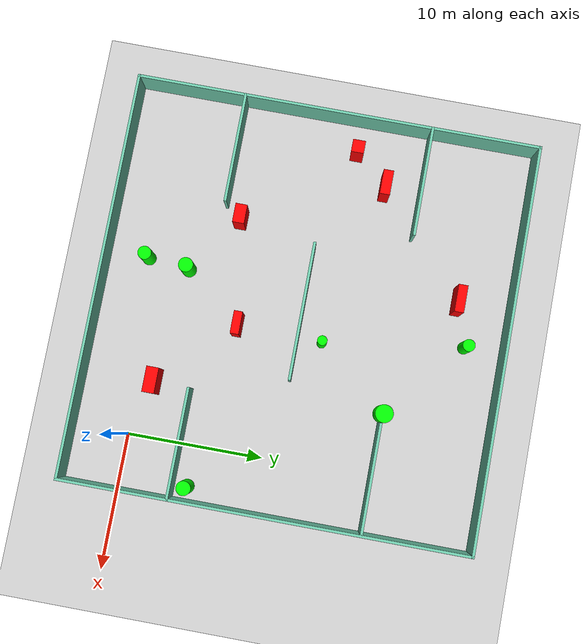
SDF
<sdf version="1.7">
 <world name="default">
  <light name="sun" type="directional">
   <pose>0 0 10 0 -0 0</pose>
   <diffuse>0.8 0.8 0.8 1</diffuse>
   <specular>0.2 0.2 0.2 1</specular>
   <attenuation>
    <range>1000</range>
    <constant>0.9</constant>
    <linear>0.01</linear>
    <quadratic>0.001</quadratic>
   </attenuation>
   <direction>-0.5 0.1 -0.9</direction>
   <spot><inner_angle>0</inner_angle><outer_angle>0</outer_angle><falloff>0</falloff></spot>
  </light>
  <model name="ground_plane">
   <static>1</static>
   <link name="link">
    <collision name="collision">
     <geometry><plane><normal>0 0 1</normal><size>100 100</size></plane></geometry>
     <surface>
      <contact><collide_bitmask>65535</collide_bitmask></contact>
      <friction><ode><mu>100</mu><mu2>50</mu2></ode></friction>
     </surface>
    </collision>
    <visual name="visual">
     <cast_shadows>0</cast_shadows>
     <geometry><plane><normal>0 0 1</normal><size>100 100</size></plane></geometry>
     <material>
      <script><uri>file://media/materials/scripts/gazebo.material</uri><name>Gazebo/Grey</name></script>
     </material>
    </visual>
   </link>
  </model>
  <gravity>0 0 -9.8</gravity>
  <magnetic_field>6e-06 2.3e-05 -4.2e-05</magnetic_field>
  <atmosphere type="adiabatic"/>
  <physics type="ode">
   <max_step_size>0.001</max_step_size>
   <real_time_factor>1</real_time_factor>
   <real_time_update_rate>1000</real_time_update_rate>
  </physics>
  <scene><ambient>0.4 0.4 0.4 1</ambient><background>0.7 0.7 0.7 1</background><shadows>1</shadows></scene>
  <spherical_coordinates>
   <surface_model>EARTH_WGS84</surface_model>
   <latitude_deg>0</latitude_deg>
   <longitude_deg>0</longitude_deg>
   <elevation>0</elevation>
   <heading_deg>0</heading_deg>
  </spherical_coordinates>
  <model name="my_base_walls">
   <link name="Wall_10">
    <collision name="Wall_10_Collision">
     <geometry><box><size>8.2 0.2 2.5</size></box></geometry>
     <pose>0 0 1.25 0 -0 0</pose>
    </collision>
    <visual name="Wall_10_Visual">
     <pose>0 0 1.25 0 -0 0</pose>
     <geometry><box><size>8.2 0.2 2.5</size></box></geometry>
     <material>
      <script><uri>file://media/materials/scripts/gazebo.material</uri><name>Gazebo/Grey</name></script>
      <ambient>0.435294 0.796078 0.67451 1</ambient>
     </material>
     <meta><layer>0</layer></meta>
    </visual>
    <pose>-11 -7 0 0 -0 0</pose>
   </link>
   <link name="Wall_12">
    <collision name="Wall_12_Collision">
     <geometry><box><size>8.2 0.2 2.5</size></box></geometry>
     <pose>0 0 1.25 0 -0 0</pose>
    </collision>
    <visual name="Wall_12_Visual">
     <pose>0 0 1.25 0 -0 0</pose>
     <geometry><box><size>8.2 0.2 2.5</size></box></geometry>
     <material>
      <script><uri>file://media/materials/scripts/gazebo.material</uri><name>Gazebo/Grey</name></script>
      <ambient>0.435294 0.796078 0.67451 1</ambient>
     </material>
     <meta><layer>0</layer></meta>
    </visual>
    <pose>-11 7 0 0 -0 0</pose>
   </link>
   <link name="Wall_14">
    <collision name="Wall_14_Collision">
     <geometry><box><size>8.2 0.2 2.5</size></box></geometry>
     <pose>0 0 1.25 0 -0 0</pose>
    </collision>
    <visual name="Wall_14_Visual">
     <pose>0 0 1.25 0 -0 0</pose>
     <geometry><box><size>8.2 0.2 2.5</size></box></geometry>
     <material>
      <script><uri>file://media/materials/scripts/gazebo.material</uri><name>Gazebo/Grey</name></script>
      <ambient>0.435294 0.796078 0.67451 1</ambient>
     </material>
     <meta><layer>0</layer></meta>
    </visual>
    <pose>11 7 0 0 -0 3.14159</pose>
   </link>
   <link name="Wall_16">
    <collision name="Wall_16_Collision">
     <geometry><box><size>10.2 0.2 2.5</size></box></geometry>
     <pose>0 0 1.25 0 -0 0</pose>
    </collision>
    <visual name="Wall_16_Visual">
     <pose>0 0 1.25 0 -0 0</pose>
     <geometry><box><size>10.2 0.2 2.5</size></box></geometry>
     <material>
      <script><uri>file://media/materials/scripts/gazebo.material</uri><name>Gazebo/Grey</name></script>
      <ambient>0.435294 0.796078 0.67451 1</ambient>
     </material>
     <meta><layer>0</layer></meta>
    </visual>
    <pose>0 0 0 0 -0 3.14159</pose>
   </link>
   <link name="Wall_2">
    <collision name="Wall_2_Collision">
     <geometry><box><size>30.2 0.2 2.5</size></box></geometry>
     <pose>0 0 1.25 0 -0 0</pose>
    </collision>
    <visual name="Wall_2_Visual">
     <pose>0 0 1.25 0 -0 0</pose>
     <geometry><box><size>30.2 0.2 2.5</size></box></geometry>
     <material>
      <script><uri>file://media/materials/scripts/gazebo.material</uri><name>Gazebo/Grey</name></script>
      <ambient>0.435294 0.796078 0.67451 1</ambient>
     </material>
     <meta><layer>0</layer></meta>
    </visual>
    <pose>0 -15 0 0 -0 3.14159</pose>
   </link>
   <link name="Wall_3">
    <collision name="Wall_3_Collision">
     <geometry><box><size>30.2 0.2 2.5</size></box></geometry>
     <pose>0 0 1.25 0 -0 0</pose>
    </collision>
    <visual name="Wall_3_Visual">
     <pose>0 0 1.25 0 -0 0</pose>
     <geometry><box><size>30.2 0.2 2.5</size></box></geometry>
     <material>
      <script><uri>file://media/materials/scripts/gazebo.material</uri><name>Gazebo/Grey</name></script>
      <ambient>0.435294 0.796078 0.67451 1</ambient>
     </material>
     <meta><layer>0</layer></meta>
    </visual>
    <pose>-15 0 0 0 -0 1.5708</pose>
   </link>
   <link name="Wall_4">
    <collision name="Wall_4_Collision">
     <geometry><box><size>30.2 0.2 2.5</size></box></geometry>
     <pose>0 0 1.25 0 -0 0</pose>
    </collision>
    <visual name="Wall_4_Visual">
     <pose>0 0 1.25 0 -0 0</pose>
     <geometry><box><size>30.2 0.2 2.5</size></box></geometry>
     <material>
      <script><uri>file://media/materials/scripts/gazebo.material</uri><name>Gazebo/Grey</name></script>
      <ambient>0.435294 0.796078 0.67451 1</ambient>
     </material>
     <meta><layer>0</layer></meta>
    </visual>
    <pose>0 15 0 0 -0 0</pose>
   </link>
   <link name="Wall_6">
    <collision name="Wall_6_Collision">
     <geometry><box><size>30.2 0.2 2.5</size></box></geometry>
     <pose>0 0 1.25 0 -0 0</pose>
    </collision>
    <visual name="Wall_6_Visual">
     <pose>0 0 1.25 0 -0 0</pose>
     <geometry><box><size>30.2 0.2 2.5</size></box></geometry>
     <material>
      <script><uri>file://media/materials/scripts/gazebo.material</uri><name>Gazebo/Grey</name></script>
      <ambient>0.435294 0.796078 0.67451 1</ambient>
     </material>
     <meta><layer>0</layer></meta>
    </visual>
    <pose>15 0 0 0 -0 1.5708</pose>
   </link>
   <link name="Wall_8">
    <collision name="Wall_8_Collision">
     <geometry><box><size>8.2 0.2 2.5</size></box></geometry>
     <pose>0 0 1.25 0 -0 0</pose>
    </collision>
    <visual name="Wall_8_Visual">
     <pose>0 0 1.25 0 -0 0</pose>
     <geometry><box><size>8.2 0.2 2.5</size></box></geometry>
     <material>
      <script><uri>file://media/materials/scripts/gazebo.material</uri><name>Gazebo/Grey</name></script>
      <ambient>0.435294 0.796078 0.67451 1</ambient>
     </material>
     <meta><layer>0</layer></meta>
    </visual>
    <pose>11 -7 0 0 -0 3.14159</pose>
   </link>
   <static>1</static>
   <pose>-11 11 0 0 -0 0</pose>
  </model>
  <model name="cylinder1">
   <static>1</static>
   <link name="link">
    <inertial>
     <mass>1</mass>
     <inertia><ixx>0.5</ixx><ixy>0</ixy><ixz>0</ixz><iyy>0.5</iyy><iyz>0</iyz><izz>1</izz></inertia>
    </inertial>
    <collision name="collision">
     <geometry><cylinder><radius>0.5277585155101295</radius><length>2.5</length></cylinder></geometry>
    </collision>
    <visual name="visual">
     <geometry><cylinder><radius>0.5277585155101295</radius><length>2.5</length></cylinder></geometry>
     <material>
      <ambient>0 1 0 1</ambient>
      <diffuse>0 1 0 1</diffuse>
      <specular>0.1 0.1 0.1 1</specular>
      <emissive>0 0 0 0</emissive>
     </material>
    </visual>
   </link>
   <pose>2.994267722380936 5.02043091980028 1.25 0 0 0</pose>
  </model>
  <model name="cylinder2">
   <static>1</static>
   <link name="link">
    <inertial>
     <mass>1</mass>
     <inertia><ixx>0.5</ixx><ixy>0</ixy><ixz>0</ixz><iyy>0.5</iyy><iyz>0</iyz><izz>1</izz></inertia>
    </inertial>
    <collision name="collision">
     <geometry><cylinder><radius>0.36270265388422485</radius><length>2.5</length></cylinder></geometry>
    </collision>
    <visual name="visual">
     <geometry><cylinder><radius>0.36270265388422485</radius><length>2.5</length></cylinder></geometry>
     <material>
      <ambient>0 1 0 1</ambient>
      <diffuse>0 1 0 1</diffuse>
      <specular>0.1 0.1 0.1 1</specular>
      <emissive>0 0 0 0</emissive>
     </material>
    </visual>
   </link>
   <pose>-9.136688729561602 12.822315415468392 1.25 0 0 0</pose>
  </model>
  <model name="cylinder3">
   <static>1</static>
   <link name="link">
    <inertial>
     <mass>1</mass>
     <inertia><ixx>0.5</ixx><ixy>0</ixy><ixz>0</ixz><iyy>0.5</iyy><iyz>0</iyz><izz>1</izz></inertia>
    </inertial>
    <collision name="collision">
     <geometry><cylinder><radius>0.4967504934767293</radius><length>2.5</length></cylinder></geometry>
    </collision>
    <visual name="visual">
     <geometry><cylinder><radius>0.4967504934767293</radius><length>2.5</length></cylinder></geometry>
     <material>
      <ambient>0 1 0 1</ambient>
      <diffuse>0 1 0 1</diffuse>
      <specular>0.1 0.1 0.1 1</specular>
      <emissive>0 0 0 0</emissive>
     </material>
    </visual>
   </link>
   <pose>-13.073549717693565 -1.0053813917558645 1.25 0 0 0</pose>
  </model>
  <model name="cylinder4">
   <static>1</static>
   <link name="link">
    <inertial>
     <mass>1</mass>
     <inertia><ixx>0.5</ixx><ixy>0</ixy><ixz>0</ixz><iyy>0.5</iyy><iyz>0</iyz><izz>1</izz></inertia>
    </inertial>
    <collision name="collision">
     <geometry><cylinder><radius>0.6619004516489778</radius><length>2.5</length></cylinder></geometry>
    </collision>
    <visual name="visual">
     <geometry><cylinder><radius>0.6619004516489778</radius><length>2.5</length></cylinder></geometry>
     <material>
      <ambient>0 1 0 1</ambient>
      <diffuse>0 1 0 1</diffuse>
      <specular>0.1 0.1 0.1 1</specular>
      <emissive>0 0 0 0</emissive>
     </material>
    </visual>
   </link>
   <pose>-4.785950680390767 18.114986943550953 1.25 0 0 0</pose>
  </model>
  <model name="cylinder5">
   <static>1</static>
   <link name="link">
    <inertial>
     <mass>1</mass>
     <inertia><ixx>0.5</ixx><ixy>0</ixy><ixz>0</ixz><iyy>0.5</iyy><iyz>0</iyz><izz>1</izz></inertia>
    </inertial>
    <collision name="collision">
     <geometry><cylinder><radius>0.45241253367585843</radius><length>2.5</length></cylinder></geometry>
    </collision>
    <visual name="visual">
     <geometry><cylinder><radius>0.45241253367585843</radius><length>2.5</length></cylinder></geometry>
     <material>
      <ambient>0 1 0 1</ambient>
      <diffuse>0 1 0 1</diffuse>
      <specular>0.1 0.1 0.1 1</specular>
      <emissive>0 0 0 0</emissive>
     </material>
    </visual>
   </link>
   <pose>-10.702308556438323 23.25260671117222 1.25 0 0 0</pose>
  </model>
  <model name="cylinder6">
   <static>1</static>
   <link name="link">
    <inertial>
     <mass>1</mass>
     <inertia><ixx>0.5</ixx><ixy>0</ixy><ixz>0</ixz><iyy>0.5</iyy><iyz>0</iyz><izz>1</izz></inertia>
    </inertial>
    <collision name="collision">
     <geometry><cylinder><radius>0.5390159285269458</radius><length>2.5</length></cylinder></geometry>
    </collision>
    <visual name="visual">
     <geometry><cylinder><radius>0.5390159285269458</radius><length>2.5</length></cylinder></geometry>
     <material>
      <ambient>0 1 0 1</ambient>
      <diffuse>0 1 0 1</diffuse>
      <specular>0.1 0.1 0.1 1</specular>
      <emissive>0 0 0 0</emissive>
     </material>
    </visual>
   </link>
   <pose>-12.759179460633161 2.09561774439345 1.25 0 0 0</pose>
  </model>
  <model name="box1">
   <static>1</static>
   <link name="link">
    <inertial>
     <mass>1</mass>
     <inertia><ixx>0.083</ixx><ixy>0</ixy><ixz>0</ixz><iyy>0.083</iyy><iyz>0</iyz><izz>0.083</izz></inertia>
    </inertial>
    <collision name="collision">
     <geometry><box><size>1.3978543477022645 0.8680225019485948 2.5</size></box></geometry>
    </collision>
    <visual name="visual">
     <geometry><box><size>1.3978543477022645 0.8680225019485948 2.5</size></box></geometry>
     <material>
      <ambient>1 0 0 1</ambient>
      <diffuse>1 0 0 1</diffuse>
      <specular>0.1 0.1 0.1 1</specular>
      <emissive>0 0 0 0</emissive>
     </material>
    </visual>
    <sensor name="my_contact" type="contact">
     <contact><collision>box_collision</collision><topic>__default_topic__</topic></contact>
    </sensor>
   </link>
   <pose>-17.186146541893173 5.246301630595529 1.25 0 0 0</pose>
  </model>
  <model name="box2">
   <static>1</static>
   <link name="link">
    <inertial>
     <mass>1</mass>
     <inertia><ixx>0.083</ixx><ixy>0</ixy><ixz>0</ixz><iyy>0.083</iyy><iyz>0</iyz><izz>0.083</izz></inertia>
    </inertial>
    <collision name="collision">
     <geometry><box><size>1.8768292203757957 0.8976385353342121 2.5</size></box></geometry>
    </collision>
    <visual name="visual">
     <geometry><box><size>1.8768292203757957 0.8976385353342121 2.5</size></box></geometry>
     <material>
      <ambient>1 0 0 1</ambient>
      <diffuse>1 0 0 1</diffuse>
      <specular>0.1 0.1 0.1 1</specular>
      <emissive>0 0 0 0</emissive>
     </material>
    </visual>
    <sensor name="my_contact" type="contact">
     <contact><collision>box_collision</collision><topic>__default_topic__</topic></contact>
    </sensor>
   </link>
   <pose>-4.126775703790845 1.2139669631788124 1.25 0 0 0</pose>
  </model>
  <model name="box3">
   <static>1</static>
   <link name="link">
    <inertial>
     <mass>1</mass>
     <inertia><ixx>0.083</ixx><ixy>0</ixy><ixz>0</ixz><iyy>0.083</iyy><iyz>0</iyz><izz>0.083</izz></inertia>
    </inertial>
    <collision name="collision">
     <geometry><box><size>1.8200333661322532 0.7444380567939 2.5</size></box></geometry>
    </collision>
    <visual name="visual">
     <geometry><box><size>1.8200333661322532 0.7444380567939 2.5</size></box></geometry>
     <material>
      <ambient>1 0 0 1</ambient>
      <diffuse>1 0 0 1</diffuse>
      <specular>0.1 0.1 0.1 1</specular>
      <emissive>0 0 0 0</emissive>
     </material>
    </visual>
    <sensor name="my_contact" type="contact">
     <contact><collision>box_collision</collision><topic>__default_topic__</topic></contact>
    </sensor>
   </link>
   <pose>-21.419803474509113 15.372057695909007 1.25 0 0 0</pose>
  </model>
  <model name="box4">
   <static>1</static>
   <link name="link">
    <inertial>
     <mass>1</mass>
     <inertia><ixx>0.083</ixx><ixy>0</ixy><ixz>0</ixz><iyy>0.083</iyy><iyz>0</iyz><izz>0.083</izz></inertia>
    </inertial>
    <collision name="collision">
     <geometry><box><size>2.0136199200076703 0.6898715012030092 2.5</size></box></geometry>
    </collision>
    <visual name="visual">
     <geometry><box><size>2.0136199200076703 0.6898715012030092 2.5</size></box></geometry>
     <material>
      <ambient>1 0 0 1</ambient>
      <diffuse>1 0 0 1</diffuse>
      <specular>0.1 0.1 0.1 1</specular>
      <emissive>0 0 0 0</emissive>
     </material>
    </visual>
    <sensor name="my_contact" type="contact">
     <contact><collision>box_collision</collision><topic>__default_topic__</topic></contact>
    </sensor>
   </link>
   <pose>-13.959329054243529 22.142908297189322 1.25 0 0 0</pose>
  </model>
  <model name="box5">
   <static>1</static>
   <link name="link">
    <inertial>
     <mass>1</mass>
     <inertia><ixx>0.083</ixx><ixy>0</ixy><ixz>0</ixz><iyy>0.083</iyy><iyz>0</iyz><izz>0.083</izz></inertia>
    </inertial>
    <collision name="collision">
     <geometry><box><size>0.9337616732038412 0.9385112927017651 2.5</size></box></geometry>
    </collision>
    <visual name="visual">
     <geometry><box><size>0.9337616732038412 0.9385112927017651 2.5</size></box></geometry>
     <material>
      <ambient>1 0 0 1</ambient>
      <diffuse>1 0 0 1</diffuse>
      <specular>0.1 0.1 0.1 1</specular>
      <emissive>0 0 0 0</emissive>
     </material>
    </visual>
    <sensor name="my_contact" type="contact">
     <contact><collision>box_collision</collision><topic>__default_topic__</topic></contact>
    </sensor>
   </link>
   <pose>-23.673163464783325 12.860828387777648 1.25 0 0 0</pose>
  </model>
  <model name="box6">
   <static>1</static>
   <link name="link">
    <inertial>
     <mass>1</mass>
     <inertia><ixx>0.083</ixx><ixy>0</ixy><ixz>0</ixz><iyy>0.083</iyy><iyz>0</iyz><izz>0.083</izz></inertia>
    </inertial>
    <collision name="collision">
     <geometry><box><size>1.671355196724735 0.6306883347680462 2.5</size></box></geometry>
    </collision>
    <visual name="visual">
     <geometry><box><size>1.671355196724735 0.6306883347680462 2.5</size></box></geometry>
     <material>
      <ambient>1 0 0 1</ambient>
      <diffuse>1 0 0 1</diffuse>
      <specular>0.1 0.1 0.1 1</specular>
      <emissive>0 0 0 0</emissive>
     </material>
    </visual>
    <sensor name="my_contact" type="contact">
     <contact><collision>box_collision</collision><topic>__default_topic__</topic></contact>
    </sensor>
   </link>
   <pose>-9.301476755149668 6.492998159218827 1.25 0 0 0</pose>
  </model>
 </world>
</sdf>
